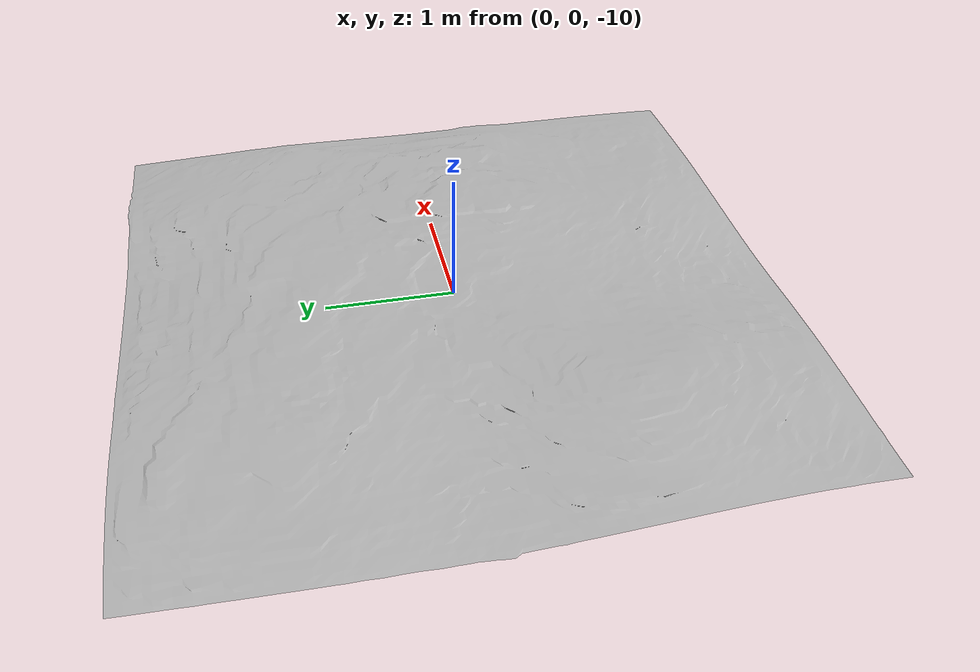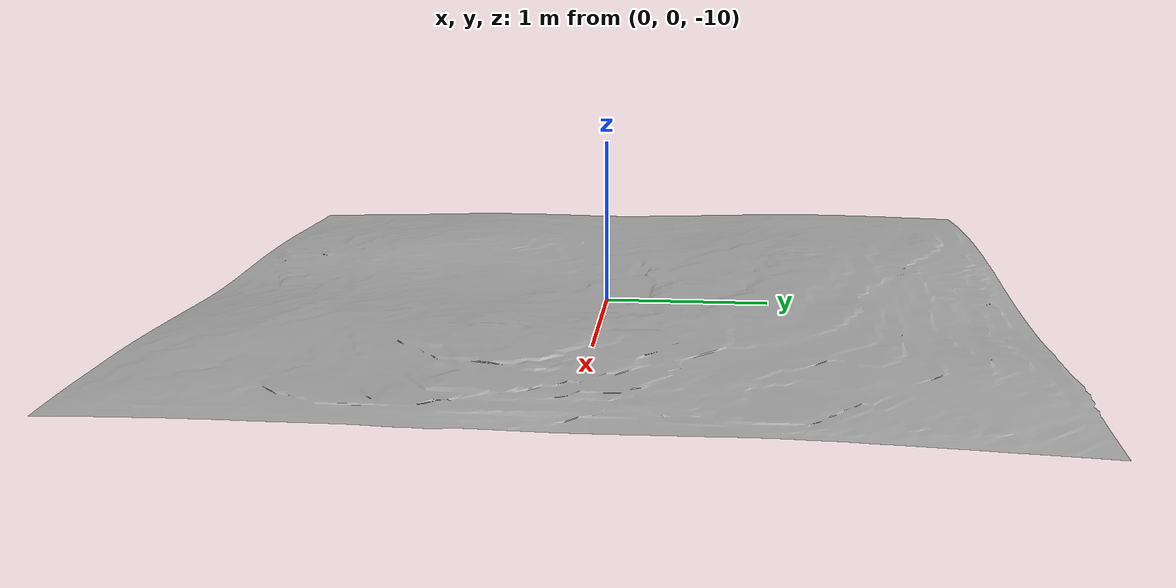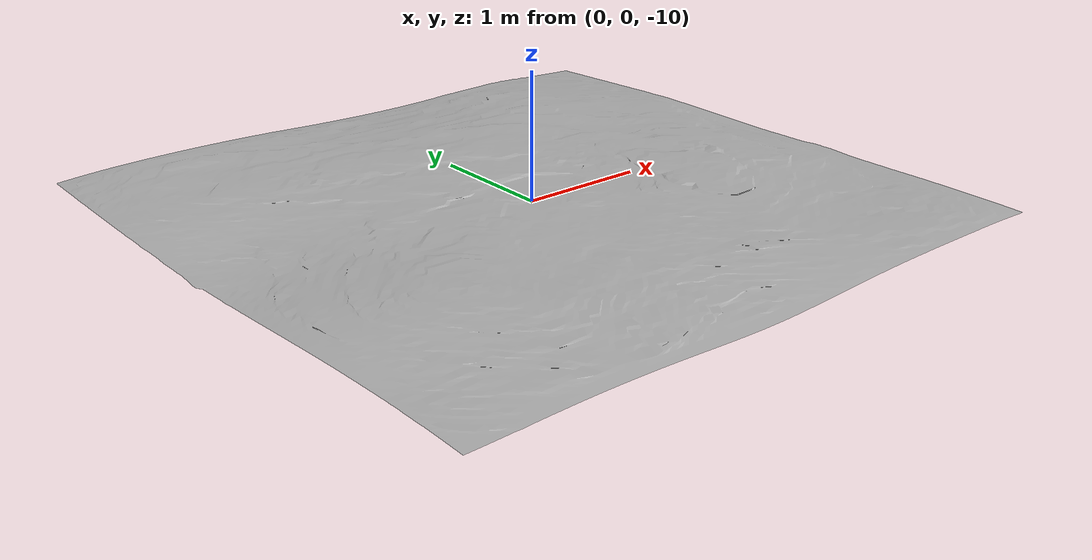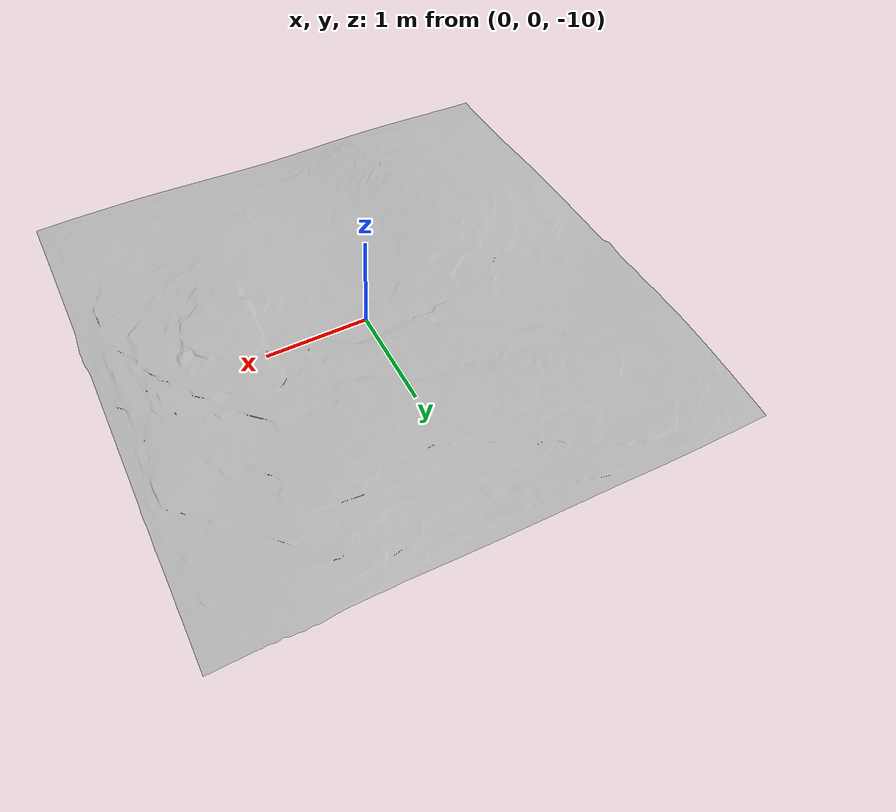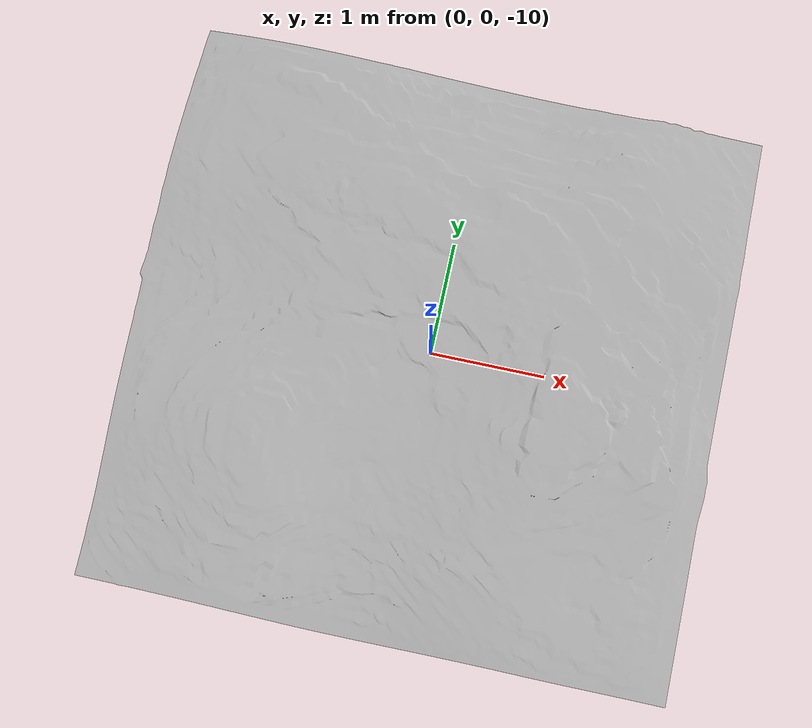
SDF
<sdf version='1.6'>
  <world name='default'>
    <include>
      <uri>model://sun</uri>
    </include>

    <include>
      <name>terrain_1</name>
      <uri>model://terrain_1</uri>
      <pose>0 0 -10 0 0 0</pose>
    </include>

    <gui fullscreen='0'>
      <camera name='user_camera'>
        <pose frame=''>9.0 -12.0 6.0 0.0 0.3 2.2</pose>
        <view_controller>orbit</view_controller>
        <projection_type>perspective</projection_type>
      </camera>
    </gui>

  </world>
</sdf>

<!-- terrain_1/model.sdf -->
<sdf version="1.5">
  <model name="terrain_1">
    <pose>0 0 0 0 0 0</pose>
    <static>true</static>
    <link name="body">
      <visual name="visual">
        <geometry>
          <mesh>
            <scale>0.1 0.1 0.1</scale>
            <uri>model://terrain_1/media/terrain_1.dae</uri>
          </mesh>
        </geometry>
	<material>
          <script>
            <uri>model://terrain_1/media/scripts</uri>
            <uri>model://terrain_1/media/Textures</uri>
            <name>RepeatedRock/Diffuse</name>
          </script>
        </material>
      </visual>
      <collision name="collision">
        <geometry>
          <mesh>
            <scale>0.1 0.1 0.1</scale>
            <uri>model://terrain_1/media/terrain_1.dae</uri>
          </mesh>
        </geometry>
      </collision>
    </link>
  </model>
</sdf>
